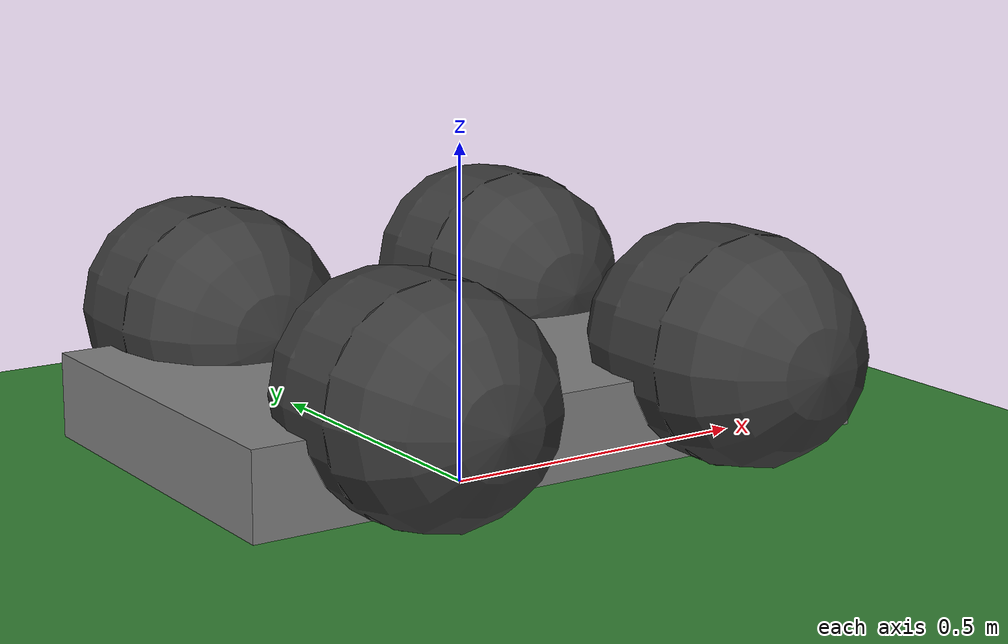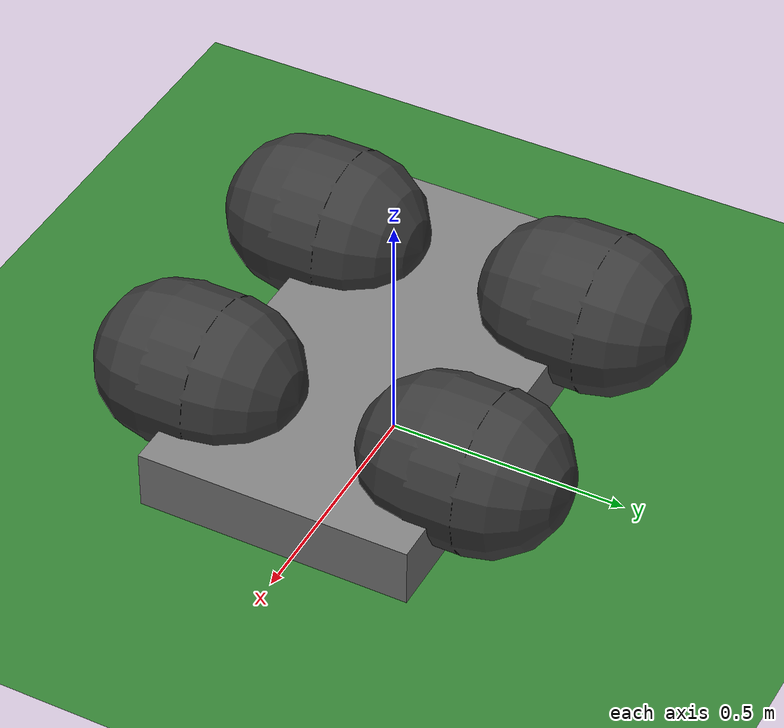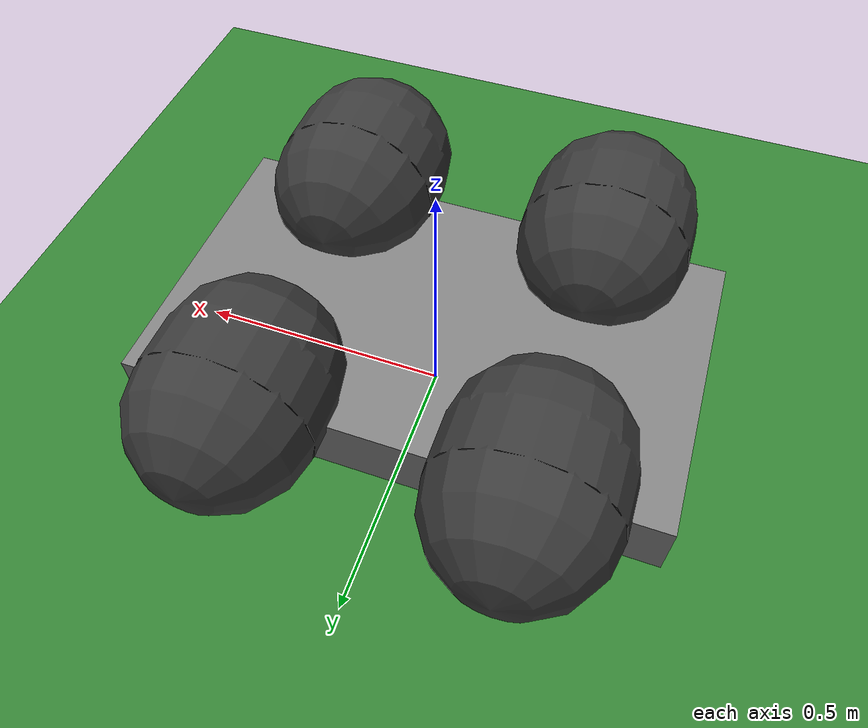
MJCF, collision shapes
<mujoco model="uneven_terrain_scene_mjx">
  <compiler angle="radian" coordinate="local" meshdir="./stls/dual_ur5_husky" texturedir="./textures"/>

  <size nuserdata="100" njmax="500" nconmax="1000" nstack="600000" nuser_body="9" nuser_jnt="1" nuser_site="1" nuser_tendon="1" nuser_actuator="12" nuser_sensor="1"/>

  <visual>
    <headlight diffuse="0.6 0.6 0.6" ambient="0.3 0.3 0.3" specular="0 0 0"/>
    <rgba haze="0.15 0.25 0.35 1"/>
    <global offwidth="2048" offheight="1536" azimuth="-120" elevation="-20"/>
    <map fogstart="3" fogend="5" force="0.1" znear="0.1"/>
    <quality shadowsize="8192"/>
  </visual>

  <default>
    <!--
    Set condim="3" for standard anisotropic friction, which is good for wheels.
    Adjusted solimp and solref for more stable contacts.
    -->
    <geom contype="1" conaffinity="1" margin="0.001" solimp="0.9 0.95 0.001" solref="0.02 1" condim="3" friction="1.2 0.05 0.05"/>
    <joint armature="0.01" damping="0.1"/>
    <default class="UR5">
      <joint damping="200"/>
    </default>
    <default class="UR5e">
      <joint damping="100"/>
    </default>
    <default class="GRIPPER">
      <joint damping="5"/>
      <geom rgba="0.424 0.424 0.424 1.0" contype="1" conaffinity="1" type="mesh"/>
    </default>
    <default class="ur5:blue">
      <geom rgba="0.635 0.784 0.910 1.0"/>
    </default>
    <default class="ur5:grey">
      <geom rgba="0.365 0.365 0.365 1.0"/>
    </default>
    <default class="ur5:black">
      <geom rgba="0.106 0.106 0.106 1.0"/>
    </default>
    <default class="husky:orange">
      <geom rgba="0.996 0.941 0.412 1.0"/>
    </default>
    <default class="husky:black">
      <geom rgba="0.192 0.192 0.192 1.0"/>
    </default>
    <default class="gripper:black">
      <geom rgba="0.424 0.424 0.424 1.0"/>
    </default>
    <default class="gripper:white">
      <geom rgba="0.898 0.898 0.898 1.0" contype="1" conaffinity="1" type="mesh"/>
    </default>
    <default class="bb2_camera">
      <geom rgba="0.776 0.624 0.294 1.0"/>
    </default>
    <default class="wheel">
      <!-- Increased wheel friction for better traction -->
      <geom rgba="0.231 0.231 0.231 1.0" friction="2.0 0.005 0.005"/>
    </default>
    <default class="sick_lidar">
      <geom rgba="0.761 0.714 0.576 1.0"/>
    </default>
    <default class="dual_ur5_husky">
      <geom rgba="0.761 0.714 0.576 1.0"/>
    </default>
  </default>

  <asset>
    <texture type="skybox" builtin="gradient" rgb1="0.3 0.5 0.7" rgb2="0 0 0" width="512" height="3072"/>
    <texture builtin="checker" height="512" name="texplane" rgb1="0.2 0.3 0.4" rgb2="0.1 0.15 0.2" type="2d" width="512"/>
    <material name="floorplane" reflectance="0.5" texrepeat="1 1" texture="texplane" texuniform="true"/>
    <material name="plain" rgba="0.2 0.5 0.2 1"/>

    <mesh name="base_link" file="base_link.stl"/>
    <mesh name="wheel" file="wheel.stl"/>
    <mesh name="top_chassis" file="top_chassis.stl"/>
    <mesh name="bumper" file="bumper.stl"/>
    <mesh name="dual_arm_bulkhead" file="dual_arm_bulkhead.stl"/>
    <mesh name="flir-ptu-simple" file="flir-ptu-simple.stl"/>
    <mesh name="base" file="base.stl"/>
    <mesh name="shoulder" file="shoulder.stl"/>
    <mesh name="upperarm" file="upperarm.stl"/>
    <mesh name="forearm" file="forearm.stl"/>
    <mesh name="wrist1" file="wrist1.stl"/>
    <mesh name="wrist2" file="wrist2.stl"/>
    <mesh name="wrist3" file="wrist3.stl"/>
    <mesh name="sick-lms1xx" file="sick-lms1xx.stl"/>
    <mesh name="pointgrey_bumblebee2" file="pointgrey_bumblebee2.stl"/>
    <mesh name="robotiq_fts300" file="robotiq_fts300.stl"/>
    <mesh name="link_0" file="link_0.STL"/>
    <mesh name="link_1" file="link_1.STL"/>
    <mesh name="link_2" file="link_2.STL"/>
    <mesh name="link_3" file="link_3.STL"/>
    <mesh name="palm" file="palm.STL"/>
    <mesh name="collision_link_0" file="collision_link_0.STL"/>
    <mesh name="collision_link_1" file="collision_link_1.STL"/>
    <mesh name="collision_link_2" file="collision_link_2.STL"/>
    <mesh name="collision_link_3" file="collision_link_3.STL"/>
    <mesh name="collision_palm" file="collision_palm.STL"/>
    <mesh file="can.stl" name="can_mesh" scale="2.0 2.0 2.0"/>
    <mesh name="terrain_mesh" file="terrain.stl"/>
    <mesh name="wheel_cylinder" file="wheel_cylinder.stl"/>
  </asset>

  <worldbody>
    <camera name="fixed" pos="0 -2 2" zaxis="0 -1 1"/>
    <light directional="true" ambient="0.2 0.2 0.2" diffuse="0.8 0.8 0.8" specular="0.3 0.3 0.3" castshadow="false" pos="0 0 4" dir="0 0 -1" name="light0"/>
    <geom name="terrain" type="plane" size="30 30 0.1" material="plain" friction="1.5 0.005 0.005"/>

    <body name="robot0:base_link" pos="0 0 0.2">
      <freejoint name="robot0:root"/>
      <inertial diaginertia="1.2869 1.2236 0.9868" mass="70.1294" pos="-0.0036 0 0.0014" quat="0.7605 -0.0133 -0.0061 0.6491"/>

      <!-- Visual Geoms -->
      <geom type="mesh" contype="0" conaffinity="0" group="1" mesh="base_link"/>
      <geom type="mesh" contype="0" conaffinity="0" group="1" mesh="top_chassis" class="husky:orange"/>
      <geom pos="0.48 0 0.091" type="mesh" contype="0" conaffinity="0" group="1" mesh="bumper"/>
      <geom pos="-0.48 0 0.091" quat="0 0 0 1" type="mesh" contype="0" conaffinity="0" group="1" mesh="bumper"/>
      <geom pos="0 0 0.225" type="mesh" contype="0" conaffinity="0" group="1" mesh="dual_arm_bulkhead"/>
      <geom pos="0.465 0 0.14" quat="0.707107 0.707107 0 0" type="mesh" contype="0" conaffinity="0" group="1" mesh="sick-lms1xx" class="sick_lidar"/>

      <!-- Collision Geom for the chassis -->
      <geom name="base_link_collision" size="0.4937 0.28545 0.061875" pos="0 0 -0.06" type="box"/>

      <body name="front_left_wheel_link" pos="0.256 0.2854 0.03282">
        <inertial pos="0 0 0" quat="0.5 0.5 -0.5 0.5" mass="5.00" diaginertia="0.04411 0.02467 0.02467"/>
        <joint name="front_left_wheel" pos="0 0 0" axis="0 1 0" damping="0.5" armature="0.05"/>
        <geom type="mesh" contype="0" conaffinity="0" group="1" mesh="wheel" class="wheel"/>
        <!-- MODIFIED: Replaced mesh with capsule for collision -->
        <geom type="capsule" size="0.165 0.05" quat="0.707107 0.707107 0 0" class="wheel"/>
      </body>
      <body name="front_right_wheel_link" pos="0.256 -0.2854 0.03282">
        <inertial pos="0 0 0" quat="0.5 0.5 -0.5 0.5" mass="5.00" diaginertia="0.04411 0.02467 0.02467"/>
        <joint name="front_right_wheel" pos="0 0 0" axis="0 1 0" damping="0.5" armature="0.05"/>
        <geom type="mesh" contype="0" conaffinity="0" group="1" mesh="wheel" class="wheel"/>
        <!-- MODIFIED: Replaced mesh with capsule for collision -->
        <geom type="capsule" size="0.165 0.05" quat="0.707107 0.707107 0 0" class="wheel"/>
      </body>
      <body name="rear_left_wheel_link" pos="-0.256 0.2854 0.03282">
        <inertial pos="0 0 0" quat="0.5 0.5 -0.5 0.5" mass="5.00" diaginertia="0.04411 0.02467 0.02467"/>
        <joint name="rear_left_wheel" pos="0 0 0" axis="0 1 0" damping="0.5" armature="0.05"/>
        <geom type="mesh" contype="0" conaffinity="0" group="1" mesh="wheel" class="wheel"/>
        <!-- MODIFIED: Replaced mesh with capsule for collision -->
        <geom type="capsule" size="0.165 0.05" quat="0.707107 0.707107 0 0" class="wheel"/>
      </body>
      <body name="rear_right_wheel_link" pos="-0.256 -0.2854 0.03282">
        <inertial pos="0 0 0" quat="0.5 0.5 -0.5 0.5" mass="5.00" diaginertia="0.04411 0.02467 0.02467"/>
        <joint name="rear_right_wheel" pos="0 0 0" axis="0 1 0" damping="0.5" armature="0.05"/>
        <geom type="mesh" contype="0" conaffinity="0" group="1" mesh="wheel" class="wheel"/>
        <!-- MODIFIED: Replaced mesh with capsule for collision -->
        <geom type="capsule" size="0.165 0.05" quat="0.707107 0.707107 0 0" class="wheel"/>
      </body>
    </body>
  </worldbody>

  <tendon>
    <fixed name="forward">
      <joint joint="front_left_wheel" coef="1"/>
      <joint joint="rear_left_wheel" coef="1"/>
      <joint joint="front_right_wheel" coef="1"/>
      <joint joint="rear_right_wheel" coef="1"/>
    </fixed>
    <fixed name="turn">
      <joint joint="front_left_wheel" coef="-2"/>
      <joint joint="rear_left_wheel" coef="-2"/>
      <joint joint="front_right_wheel" coef="2"/>
      <joint joint="rear_right_wheel" coef="2"/>
    </fixed>
  </tendon>

  <actuator>
    <motor name="forward" tendon="forward" ctrlrange="-100.0 100.0" gear="1"/>
    <motor name="turn" tendon="turn" ctrlrange="-50.0 50.0" gear="1"/>
  </actuator>

  <sensor>
    <jointactuatorfrc name="front_left_force" joint="front_left_wheel"/>
    <jointactuatorfrc name="front_right_force" joint="front_right_wheel"/>
    <jointactuatorfrc name="rear_left_force" joint="rear_left_wheel"/>
    <jointactuatorfrc name="rear_right_force" joint="rear_right_wheel"/>
    <framepos name="base_position" objtype="body" objname="robot0:base_link"/>
    <frameangvel name="base_angular_velocity" objtype="body" objname="robot0:base_link"/>
  </sensor>
</mujoco>
